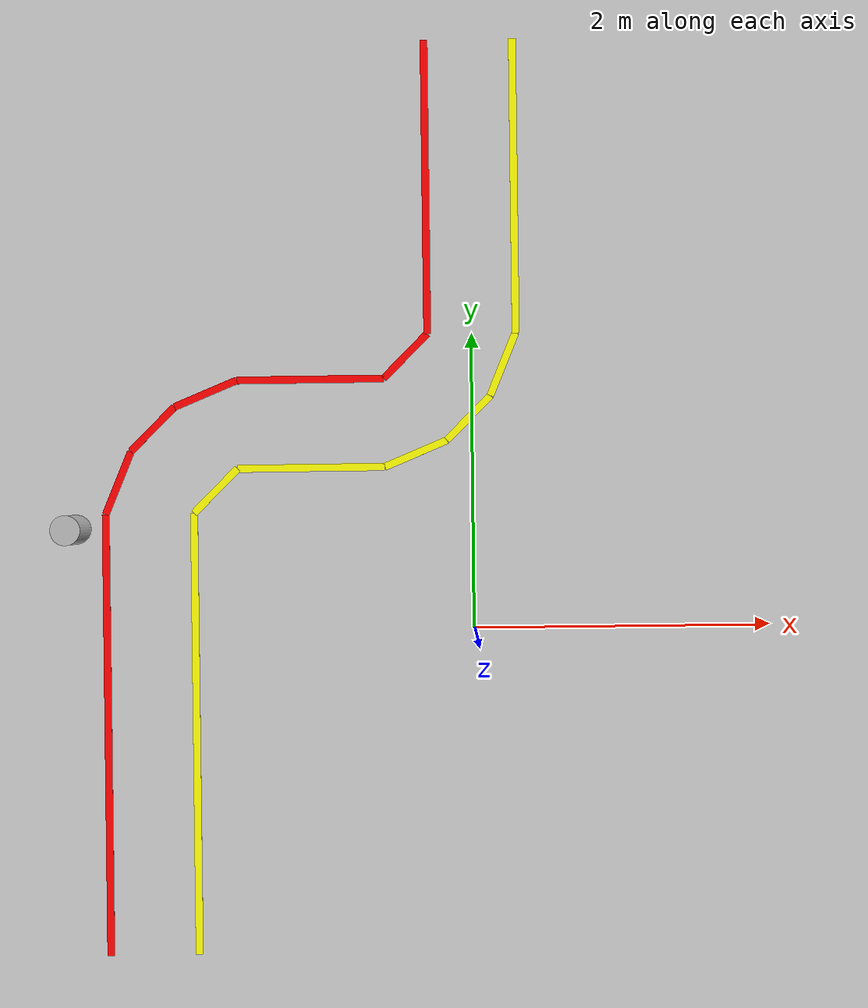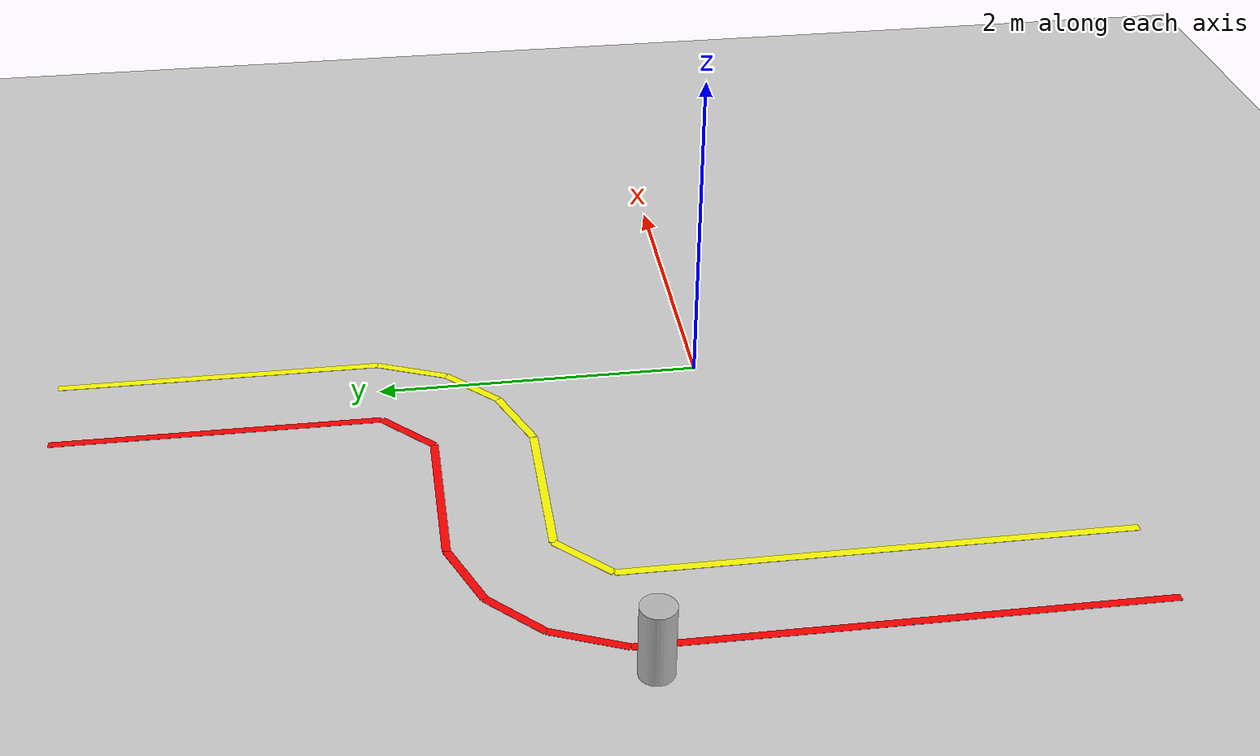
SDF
<sdf version='1.10'>
  <world name='empty'>
    <physics name='1ms' type='ignored'>
      <max_step_size>0.001</max_step_size>
      <real_time_factor>1</real_time_factor>
      <real_time_update_rate>1000</real_time_update_rate>
    </physics>
    <plugin name='gz::sim::systems::Physics' filename='gz-sim-physics-system'/>
    <plugin name='gz::sim::systems::UserCommands' filename='gz-sim-user-commands-system'/>
    <plugin name='gz::sim::systems::SceneBroadcaster' filename='gz-sim-scene-broadcaster-system'/>
    <plugin name='gz::sim::systems::Contact' filename='gz-sim-contact-system'/>
    <gravity>0 0 -9.8000000000000007</gravity>
    <magnetic_field>5.5644999999999998e-06 2.2875799999999999e-05 -4.2388400000000002e-05</magnetic_field>
    <atmosphere type='adiabatic'/>
    <scene>
      <ambient>0.400000006 0.400000006 0.400000006 1</ambient>
      <background>0.699999988 0.699999988 0.699999988 1</background>
      <shadows>true</shadows>
    </scene>
    <plugin name='gz::sim::systems::Sensors' filename='gz-sim-sensors-system'>
      <render_engine>ogre2</render_engine>
    </plugin>
    <model name='ground_plane'>
      <static>true</static>
      <link name='link'>
        <collision name='collision'>
          <geometry>
            <plane>
              <normal>0 0 1</normal>
              <size>100 100</size>
            </plane>
          </geometry>
          <surface>
            <friction>
              <ode/>
            </friction>
            <bounce/>
            <contact/>
          </surface>
        </collision>
        <visual name='visual'>
          <geometry>
            <plane>
              <normal>0 0 1</normal>
              <size>100 100</size>
            </plane>
          </geometry>
          <material>
            <ambient>0.800000012 0.800000012 0.800000012 1</ambient>
            <diffuse>0.800000012 0.800000012 0.800000012 1</diffuse>
            <specular>0.800000012 0.800000012 0.800000012 1</specular>
          </material>
        </visual>
        <pose>0 0 0 0 0 0</pose>
        <inertial>
          <pose>0 0 0 0 0 0</pose>
          <mass>1</mass>
          <inertia>
            <ixx>1</ixx>
            <ixy>0</ixy>
            <ixz>0</ixz>
            <iyy>1</iyy>
            <iyz>0</iyz>
            <izz>1</izz>
          </inertia>
        </inertial>
        <enable_wind>false</enable_wind>
      </link>
      <pose>4 0 0 0 0 0</pose>
      <self_collide>false</self_collide>
    </model>

    <!-- Yellow Lane Marking -->
    <model name="yellow_lane1">
        <static>true</static>
        <pose>0.3 3.0 0.001 0 0 0</pose>
        <link name="link">
            <visual name="visual">
                <geometry>
                    <box>
                        <size>0.05 2.0 0.002</size>
                    </box>
                </geometry>
                <material>
                    <ambient>1 1 0 1</ambient>
                    <diffuse>1 1 0 1</diffuse>
                    <specular>0 0 0 1</specular>
                </material>
            </visual>
            <!-- No collision needed for painted lines -->
        </link>
    </model>
    <model name="yellow_lane2">
        <static>true</static>
        <pose>0.2112 1.788 0.001 0 0 -0.3927</pose>
        <link name="link">
            <visual name="visual">
                <geometry>
                    <box>
                        <size>0.05 0.459 0.002</size>
                    </box>
                </geometry>
                <material>
                    <ambient>1 1 0 1</ambient>
                    <diffuse>1 1 0 1</diffuse>
                    <specular>0 0 0 1</specular>
                </material>
            </visual>
            <!-- No collision needed for painted lines -->
        </link>
    </model>
    <model name="yellow_lane3">
        <static>true</static>
        <pose>-0.025 1.426 0.001 0 0 -0.7854</pose>
        <link name="link">
            <visual name="visual">
                <geometry>
                    <box>
                        <size>0.05 0.424 0.002</size>
                    </box>
                </geometry>
                <material>
                    <ambient>1 1 0 1</ambient>
                    <diffuse>1 1 0 1</diffuse>
                    <specular>0 0 0 1</specular>
                </material>
            </visual>
            <!-- No collision needed for painted lines -->
        </link>
    </model>
    <model name="yellow_lane4">
        <static>true</static>
        <pose>-0.387 1.188 0.001 0 0 -1.178</pose>
        <link name="link">
            <visual name="visual">
                <geometry>
                    <box>
                        <size>0.05 0.459 0.002</size>
                    </box>
                </geometry>
                <material>
                    <ambient>1 1 0 1</ambient>
                    <diffuse>1 1 0 1</diffuse>
                    <specular>0 0 0 1</specular>
                </material>
            </visual>
            <!-- No collision needed for painted lines -->
        </link>
    </model>
    <model name="yellow_lane5">
        <static>true</static>
        <pose>-1.1 1.1 0.001 0 0 -1.57</pose>
        <link name="link">
            <visual name="visual">
                <geometry>
                    <box>
                        <size>0.05 1.0 0.002</size>
                    </box>
                </geometry>
                <material>
                    <ambient>1 1 0 1</ambient>
                    <diffuse>1 1 0 1</diffuse>
                    <specular>0 0 0 1</specular>
                </material>
            </visual>
            <!-- No collision needed for painted lines -->
        </link>
    </model>
    <model name="yellow_lane6">
        <static>true</static>
        <pose>-1.75 0.95 0.001 0 0 -0.7854</pose>
        <link name="link">
            <visual name="visual">
                <geometry>
                    <box>
                        <size>0.05 0.424 0.002</size>
                    </box>
                </geometry>
                <material>
                    <ambient>1 1 0 1</ambient>
                    <diffuse>1 1 0 1</diffuse>
                    <specular>0 0 0 1</specular>
                </material>
            </visual>
            <!-- No collision needed for painted lines -->
        </link>
    </model>
    <model name="yellow_lane7">
        <static>true</static>
        <pose>-1.9 -0.7 0.001 0 0 0</pose>
        <link name="link">
            <visual name="visual">
                <geometry>
                    <box>
                        <size>0.05 3.0 0.002</size>
                    </box>
                </geometry>
                <material>
                    <ambient>1 1 0 1</ambient>
                    <diffuse>1 1 0 1</diffuse>
                    <specular>0 0 0 1</specular>
                </material>
            </visual>
            <!-- No collision needed for painted lines -->
        </link>
    </model>

    <!-- Red Lane Marking -->
    <model name="red_lane1">
        <static>true</static>
        <pose>-0.3 3.0 0.001 0 0 0</pose>
        <link name="link">
            <visual name="visual">
                <geometry>
                    <box>
                        <size>0.05 2.0 0.002</size>
                    </box>
                </geometry>
                <material>
                    <ambient>1 0 0 1</ambient>
                    <diffuse>1 0 0 1</diffuse>
                    <specular>0 0 0 1</specular>
                </material>
            </visual>
        </link>
    </model>
    <model name="red_lane2">
        <static>true</static>
        <pose>-0.45 1.85 0.001 0 0 -0.7854</pose>
        <link name="link">
            <visual name="visual">
                <geometry>
                    <box>
                        <size>0.05 0.424 0.002</size>
                    </box>
                </geometry>
                <material>
                    <ambient>1 0 0 1</ambient>
                    <diffuse>1 0 0 1</diffuse>
                    <specular>0 0 0 1</specular>
                </material>
            </visual>
        </link>
    </model>
    <model name="red_lane3">
        <static>true</static>
        <pose>-1.1 1.7 0.001 0 0 -1.57</pose>
        <link name="link">
            <visual name="visual">
                <geometry>
                    <box>
                        <size>0.05 1.0 0.002</size>
                    </box>
                </geometry>
                <material>
                    <ambient>1 0 0 1</ambient>
                    <diffuse>1 0 0 1</diffuse>
                    <specular>0 0 0 1</specular>
                </material>
            </visual>
        </link>
    </model>
    <model name="red_lane4">
        <static>true</static>
        <pose>-1.812 1.612 0.001 0 0 -1.178</pose>
        <link name="link">
            <visual name="visual">
                <geometry>
                    <box>
                        <size>0.05 0.459 0.002</size>
                    </box>
                </geometry>
                <material>
                    <ambient>1 0 0 1</ambient>
                    <diffuse>1 0 0 1</diffuse>
                    <specular>0 0 0 1</specular>
                </material>
            </visual>
            <!-- No collision needed for painted lines -->
        </link>
    </model>
    <model name="red_lane5">
        <static>true</static>
        <pose>-2.174 1.374 0.001 0 0 -0.7854</pose>
        <link name="link">
            <visual name="visual">
                <geometry>
                    <box>
                        <size>0.05 0.424 0.002</size>
                    </box>
                </geometry>
                <material>
                    <ambient>1 0 0 1</ambient>
                    <diffuse>1 0 0 1</diffuse>
                    <specular>0 0 0 1</specular>
                </material>
            </visual>
            <!-- No collision needed for painted lines -->
        </link>
    </model>
    <model name="red_lane6">
        <static>true</static>
        <pose>-2.411 1.012 0.001 0 0 -0.3927</pose>
        <link name="link">
            <visual name="visual">
                <geometry>
                    <box>
                        <size>0.05 0.459 0.002</size>
                    </box>
                </geometry>
                <material>
                    <ambient>1 0 0 1</ambient>
                    <diffuse>1 0 0 1</diffuse>
                    <specular>0 0 0 1</specular>
                </material>
            </visual>
            <!-- No collision needed for painted lines -->
        </link>
    </model>
    <model name="red_lane7">
        <static>true</static>
        <pose>-2.5 -0.7 0.001 0 0 0</pose>
        <link name="link">
            <visual name="visual">
                <geometry>
                    <box>
                        <size>0.05 3.0 0.002</size>
                    </box>
                </geometry>
                <material>
                    <ambient>1 0 0 1</ambient>
                    <diffuse>1 0 0 1</diffuse>
                    <specular>0 0 0 1</specular>
                </material>
            </visual>
            <!-- No collision needed for painted lines -->
        </link>
    </model>

    <model name='beacon4'>
      <link name='link'>
        <visual name='visual'>
          <geometry>
            <mesh>
              <uri>file://beacons/beacon4.obj</uri>
            </mesh>
          </geometry>
        </visual>
        <collision name='collision'>
          <geometry>
            <mesh>
              <uri>file://beacons/beacon4.obj</uri>
            </mesh>
          </geometry>
        </collision>
        <pose>0 0 0 0 0 0</pose>
        <inertial>
          <pose>0 0 0 0 0 0</pose>
          <mass>1</mass>
          <inertia>
            <ixx>1</ixx>
            <ixy>0</ixy>
            <ixz>0</ixz>
            <iyy>1</iyy>
            <iyz>0</iyz>
            <izz>1</izz>
          </inertia>
        </inertial>
        <enable_wind>false</enable_wind>
      </link>
      <pose>-2.7 0.69999999999999996 0.22000000000000003 1.5700000000000001 0 0</pose>
      <static>false</static>
      <self_collide>true</self_collide>
    </model>

    <light name='sun' type='directional'>
      <pose>0 0 10 0 0 0</pose>
      <cast_shadows>true</cast_shadows>
      <intensity>1</intensity>
      <direction>-0.5 0.10000000000000001 -0.90000000000000002</direction>
      <diffuse>0.800000012 0.800000012 0.800000012 1</diffuse>
      <specular>0.200000003 0.200000003 0.200000003 1</specular>
      <attenuation>
        <range>1000</range>
        <linear>0.0099999997764825821</linear>
        <constant>0.89999997615814209</constant>
        <quadratic>0.0010000000474974513</quadratic>
      </attenuation>
      <spot>
        <inner_angle>0</inner_angle>
        <outer_angle>0</outer_angle>
        <falloff>0</falloff>
      </spot>
    </light>
  </world>
</sdf>
